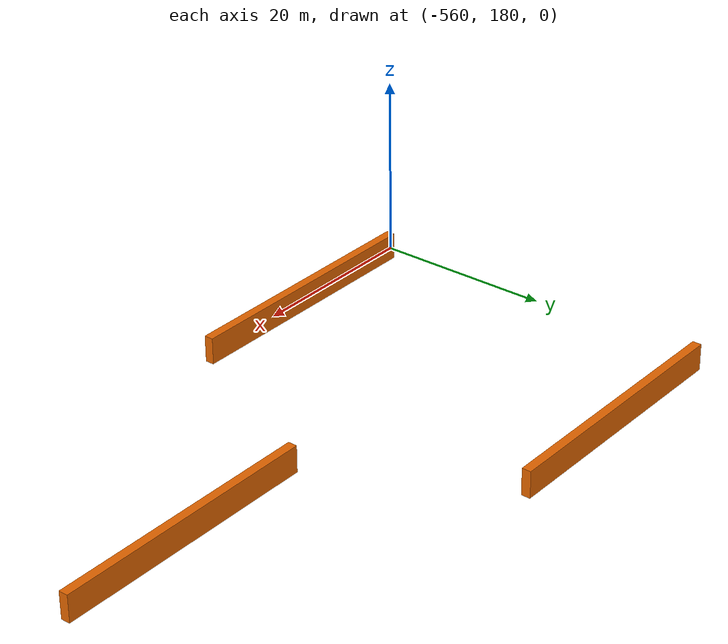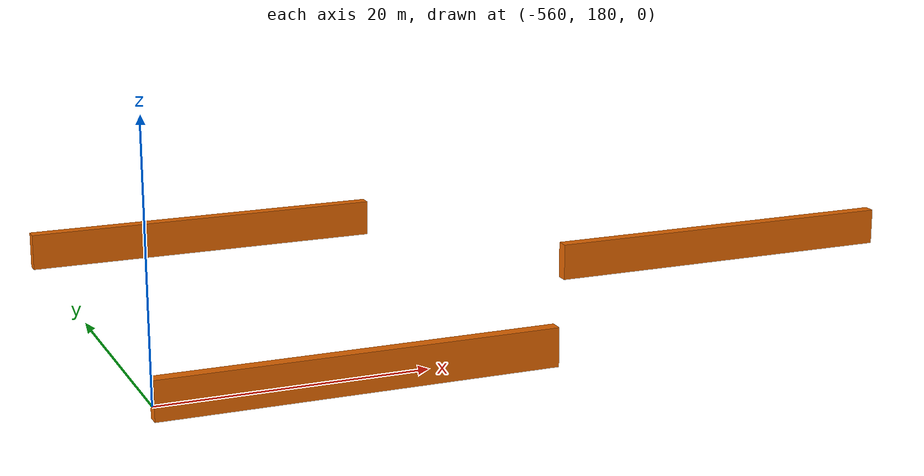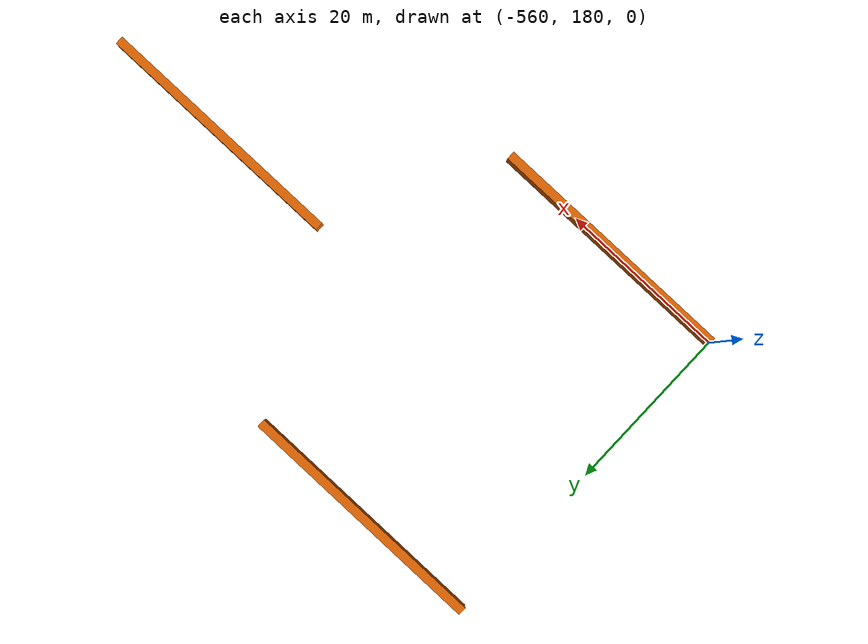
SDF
<?xml version="1.0"?>
<sdf version="1.6">
  <model name="tutorial_obstacle_course">
    <static>true</static>

    <!-- WALL_A: blocks the left half, USV must detour to the right -->
    <link name="wall_a">
      <pose>-545 180 0.5 0 0 0</pose>
      <visual name="visual">
        <geometry>
          <box>
            <size>30 1 3</size>
          </box>
        </geometry>
        <material>
          <ambient>0.9 0.4 0.0 1.0</ambient>
          <diffuse>0.9 0.4 0.0 1.0</diffuse>
          <specular>0.2 0.2 0.2 1.0</specular>
        </material>
      </visual>
      <collision name="collision">
        <geometry>
          <box>
            <size>30 1 3</size>
          </box>
        </geometry>
      </collision>
    </link>

    <!-- WALL_B: blocks the right half, USV must detour back to the left -->
    <link name="wall_b">
      <pose>-505 200 0.5 0 0 0</pose>
      <visual name="visual">
        <geometry>
          <box>
            <size>30 1 3</size>
          </box>
        </geometry>
        <material>
          <ambient>0.9 0.4 0.0 1.0</ambient>
          <diffuse>0.9 0.4 0.0 1.0</diffuse>
          <specular>0.2 0.2 0.2 1.0</specular>
        </material>
      </visual>
      <collision name="collision">
        <geometry>
          <box>
            <size>30 1 3</size>
          </box>
        </geometry>
      </collision>
    </link>

    <!-- WALL_C: blocks the left half again, USV must detour to the right -->
    <link name="wall_c">
      <pose>-545 220 0.5 0 0 0</pose>
      <visual name="visual">
        <geometry>
          <box>
            <size>30 1 3</size>
          </box>
        </geometry>
        <material>
          <ambient>0.9 0.4 0.0 1.0</ambient>
          <diffuse>0.9 0.4 0.0 1.0</diffuse>
          <specular>0.2 0.2 0.2 1.0</specular>
        </material>
      </visual>
      <collision name="collision">
        <geometry>
          <box>
            <size>30 1 3</size>
          </box>
        </geometry>
      </collision>
    </link>

  </model>
</sdf>
